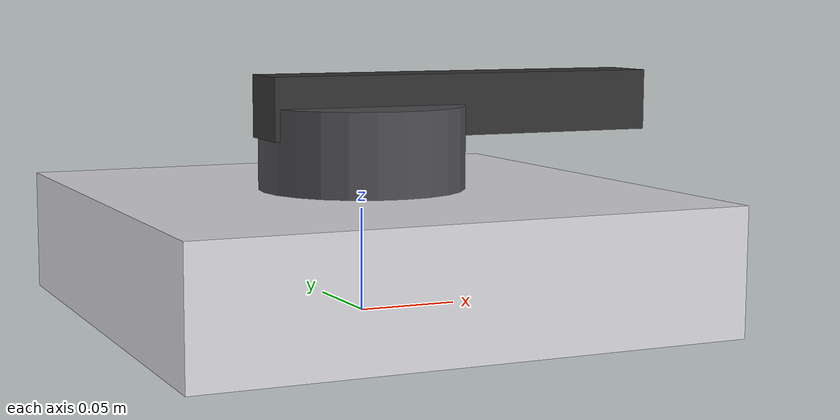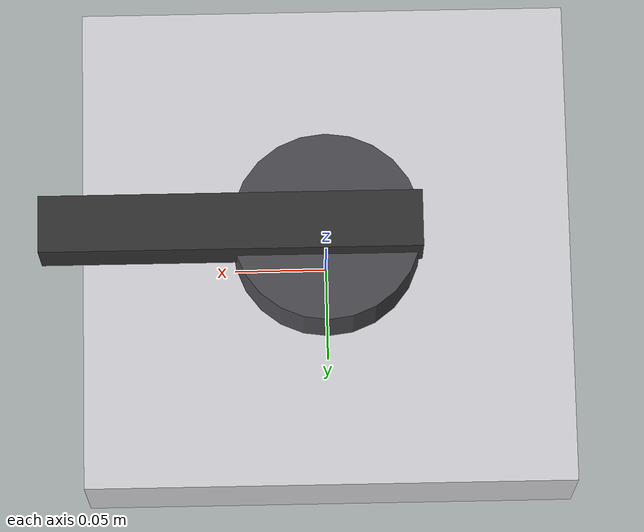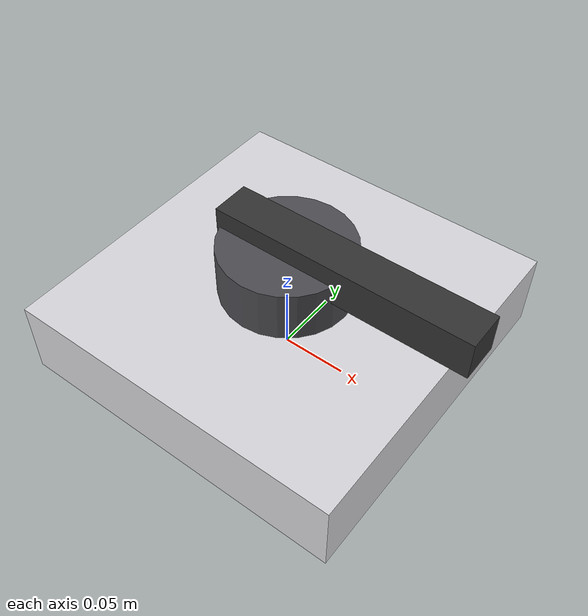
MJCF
<?xml version="1.0" encoding="utf-8"?>
<mujoco model="xrd_diffractometer">
  <compiler angle="radian" autolimits="true"/>
  <default>
    <default class="body"><geom contype="1" conaffinity="1"/></default>
  </default>
  <worldbody>
    <body name="base">
      <geom type="box" size="0.13 0.13 0.03" pos="0 0 0.03" rgba="0.85 0.85 0.87 1" class="body"/>
      <geom type="cylinder" size="0.05 0.02" pos="0 0 0.08" rgba="0.3 0.3 0.32 1" class="body"/>
      <body name="goniometer_arm" pos="0 0 0.10">
        <joint name="goniometer_arm_joint" type="hinge" axis="0 0 1" range="-2.0 2.0" damping="0.4" frictionloss="0.15"/>
  <geom type="box" size="0.10 0.015 0.015" pos="0.05 0 0" rgba="0.2 0.2 0.2 1" class="body"/>
      </body>
    </body>
  </worldbody>
</mujoco>
